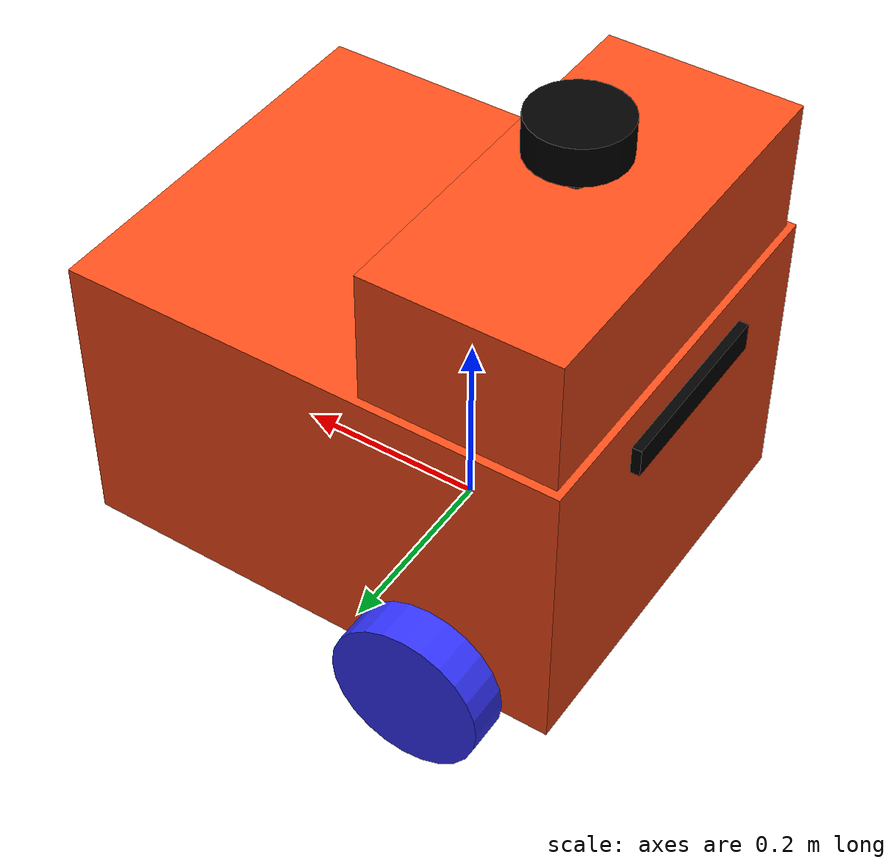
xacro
<?xml version="1.0"?>
<robot xmlns:xacro="http://www.ros.org/wiki/xacro" name="robot">

    <xacro:arg name="use_ros2_control" default="true"/>
    <xacro:arg name="sim_mode" default="false"/>

    <xacro:include filename="ROBOT_core.xacro" />

    <xacro:if value="$(arg use_ros2_control)">
        <xacro:include filename="ros2_control.xacro" />
    </xacro:if>
    <xacro:unless value="$(arg use_ros2_control)">
        <xacro:include filename="gazebo_control.xacro" />
    </xacro:unless>

    <xacro:include filename="lidar.xacro" />
    <xacro:include filename="camera.xacro" />

</robot>

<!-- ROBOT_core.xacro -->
<robot xmlns:xacro="http://www.ros.org/wiki/xacro">
    <xacro:include filename="inertial_macros.xacro"/>

    <xacro:property name="chassis_length" value="0.535"/>
    <xacro:property name="chassis_width" value="0.435"/>
    <xacro:property name="chassis_height" value="0.318"/>
    <xacro:property name="chassis_mass" value="1.0"/>
    <xacro:property name="wheel_radius" value="0.082"/>
    <xacro:property name="wheel_thickness" value="0.045"/>
    <xacro:property name="wheel_mass" value="0.05"/>
    <xacro:property name="wheel_offset_x" value="0.226"/>
    <xacro:property name="wheel_offset_y" value="0.2405"/>
    <xacro:property name="wheel_offset_z" value="0.01"/>
    <xacro:property name="caster_wheel_radius" value="0.05"/>
    <xacro:property name="caster_wheel_mass" value="0.01"/>
    <xacro:property name="caster_wheel_offset_x" value="0.075"/>
    <xacro:property name="caster_wheel_offset_z" value="${wheel_offset_z - wheel_radius + caster_wheel_radius}"/>

    <material name="white">
        <color rgba="1 1 1 1" />
    </material>

    <material name="orange">
        <color rgba="1 0.3 0.1 1"/>
    </material>

    <material name="blue">
        <color rgba="0.2 0.2 1 1"/>
    </material>

    <material name="black">
        <color rgba="0 0 0 1"/>
    </material>

    <material name="red">
        <color rgba="1 0 0 1"/>
    </material>

    <!-- BASE LINK -->
    <link name="base_link">
    </link>

    <!-- BASE_FOOTPRINT LINK -->
    <joint name="base_footprint_joint" type="fixed">
        <parent link="base_link"/>
        <child link="base_footprint"/>
        <origin xyz="0 0 0" rpy="0 0 0"/>
    </joint>

    <link name="base_footprint">
    </link>

    <!-- CHASSIS LINK -->
    <joint name="chassis_joint" type="fixed">
        <parent link="base_link"/>
        <child link="chassis"/>
        <origin xyz="${-wheel_offset_x} 0 ${-wheel_offset_z}"/>
    </joint>

    <link name="chassis">
        <visual>
            <origin xyz="${chassis_length/2} 0 ${chassis_height/2}"/>
            <geometry>
                <box size="${chassis_length} ${chassis_width} ${chassis_height}"/>
            </geometry>
            <material name="orange"/>
        </visual>

        <collision>
            <origin xyz="${chassis_length/2} 0 ${chassis_height/2}"/>
            <geometry>
                <box size="${chassis_length} ${chassis_width} ${chassis_height}"/>
            </geometry>
        </collision>
        <xacro:inertial_box mass="0.5" x="${chassis_length}" y="${chassis_width}" z="${chassis_height}">
            <origin xyz="${chassis_length/2} 0 ${chassis_height/2}" rpy="0 0 0"/>
        </xacro:inertial_box>
    </link>

    <!-- LEFT WHEEL LINK -->
    <joint name="left_wheel_joint" type="continuous">
        <parent link="base_link"/>
        <child link="left_wheel"/>
        <origin xyz="-0.095 ${wheel_offset_y} 0" rpy="-${pi/2} 0 0" />
        <axis xyz="0 0 2"/>
    </joint>

    <link name="left_wheel">
        <visual>
            <geometry>
                <cylinder radius="${wheel_radius}" length="${wheel_thickness}"/>
            </geometry>
            <material name="blue"/>
        </visual>
        <collision>
            <geometry>
                <sphere radius="${wheel_radius}"/>
            </geometry>
        </collision>
        <xacro:inertial_cylinder mass="${wheel_mass}" length="${wheel_thickness}" radius="${wheel_radius}">
            <origin xyz="0 0 0" rpy="0 0 0"/>
        </xacro:inertial_cylinder>
    </link>

    <!-- RIGHT WHEEL LINK -->
    <joint name="right_wheel_joint" type="continuous">
        <parent link="base_link"/>
        <child link="right_wheel"/>
        <origin xyz="-0.095 ${-wheel_offset_y} 0" rpy="${pi/2} 0 0" />
        <axis xyz="0 0 -2"/>
    </joint>

    <link name="right_wheel">
        <visual>
            <geometry>
                <cylinder radius="${wheel_radius}" length="${wheel_thickness}"/>
            </geometry>
            <material name="blue"/>
        </visual>
        <collision>
            <geometry>
                <sphere radius="${wheel_radius}"/>
            </geometry>
        </collision>
        <xacro:inertial_cylinder mass="${wheel_mass}" length="${wheel_thickness}" radius="${wheel_radius}">
            <origin xyz="0 0 0" rpy="0 0 0"/>
        </xacro:inertial_cylinder>
    </link>

    <!-- CASTER WHEEL LINK -->
    <joint name="caster_wheel_joint" type="fixed">
        <parent link="chassis"/>
        <child link="caster_wheel"/>
        <origin xyz="0.445 0.1300 ${caster_wheel_offset_z}"/>
    </joint>

    <link name="caster_wheel">
        <visual>
            <geometry>
                <sphere radius="${caster_wheel_radius}"/>
            </geometry>
            <material name="red"/>
        </visual>
        <collision>
            <geometry>
                <sphere radius="${caster_wheel_radius}"/>
            </geometry>
        </collision>
        <xacro:inertial_sphere mass="${caster_wheel_mass}" radius="${caster_wheel_radius}">
            <origin xyz="0 0 0" rpy="0 0 0"/>
        </xacro:inertial_sphere>
    </link>

    <!-- CASTER2 WHEEL LINK -->
    <joint name="caster2_wheel_joint" type="fixed">
        <parent link="chassis"/>
        <child link="caster2_wheel"/>
        <origin xyz="0.445 -0.1300 ${caster_wheel_offset_z}"/>
    </joint>

    <link name="caster2_wheel">
        <visual>
            <geometry>
                <sphere radius="${caster_wheel_radius}"/>
            </geometry>
            <material name="red"/>
        </visual>
        <collision>
            <geometry>
                <sphere radius="${caster_wheel_radius}"/>
            </geometry>
        </collision>
        <xacro:inertial_sphere mass="${caster_wheel_mass}" radius="${caster_wheel_radius}">
            <origin xyz="0 0 0" rpy="0 0 0"/>
        </xacro:inertial_sphere>
    </link>

    <!-- HEAD LINK -->
    <joint name="head_joint" type="fixed">
        <parent link="chassis"/>
        <child link="head"/>
        <origin xyz="${-wheel_offset_x} 0 ${-wheel_offset_z}"/>
    </joint>

    <link name="head">
        <visual>
            <origin xyz="0.335 0 0.399"/>
            <geometry>
                <box size="0.204 0.419 0.140"/>
            </geometry>
            <material name="orange"/>
        </visual>

        <collision>
            <origin xyz="${chassis_length/2} 0 ${chassis_height/2}"/>
            <geometry>
                <box size="${chassis_length} ${chassis_width} ${chassis_height}"/>
            </geometry>
        </collision>
        <xacro:inertial_box mass="0.5" x="${chassis_length}" y="${chassis_width}" z="${chassis_height}">
            <origin xyz="${chassis_length/2} 0 ${chassis_height/2}" rpy="0 0 0"/>
        </xacro:inertial_box>
    </link>

</robot>

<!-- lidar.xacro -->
<robot xmlns:xacro="http://www.ros.org/wiki/xacro">

    <joint name="laser_joint" type="fixed">
        <parent link="chassis"/>
        <child link="laser_frame"/>
        <origin xyz="0.122 0 0.512" rpy="0 0 0"/>
    </joint>

    <link name="laser_frame">
        <visual>
            <geometry>
                <cylinder radius="0.05" length="0.04"/>
            </geometry>
            <material name="black"/>
        </visual>
        <visual>
            <origin xyz="0 0 -0.05"/>
            <geometry>
                <cylinder radius="0.01" length="0.1"/>
            </geometry>
            <material name="black"/>
        </visual>
        <collision>
            <geometry>
                <cylinder radius="0.05" length="0.04"/>
            </geometry>
        </collision>
        <xacro:inertial_cylinder mass="0.1" length="0.04" radius="0.05">
            <origin xyz="0 0 0" rpy="0 0 0"/>
        </xacro:inertial_cylinder>
    </link>

</robot>

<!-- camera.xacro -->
<robot xmlns:xacro="http://www.ros.org/wiki/xacro">

    <joint name="camera_joint" type="fixed">
        <parent link="chassis"/>
        <child link="camera_link"/>
        <origin xyz="-0.009 0 0.270" rpy="0 0 0"/>
    </joint>

    <link name="camera_link">
        <visual>
            <geometry>
                <box size="0.010 0.2 0.03"/>
            </geometry>
            <material name="black"/>
        </visual>
    </link>

    <joint name="camera_optical_joint" type="fixed">
        <parent link="camera_link"/>
        <child link="camera_link_optical"/>
        <origin xyz="0 0 0" rpy="${-pi/2} 0 ${-pi/2}"/>
    </joint>

    <link name="camera_link_optical"></link>

</robot>
